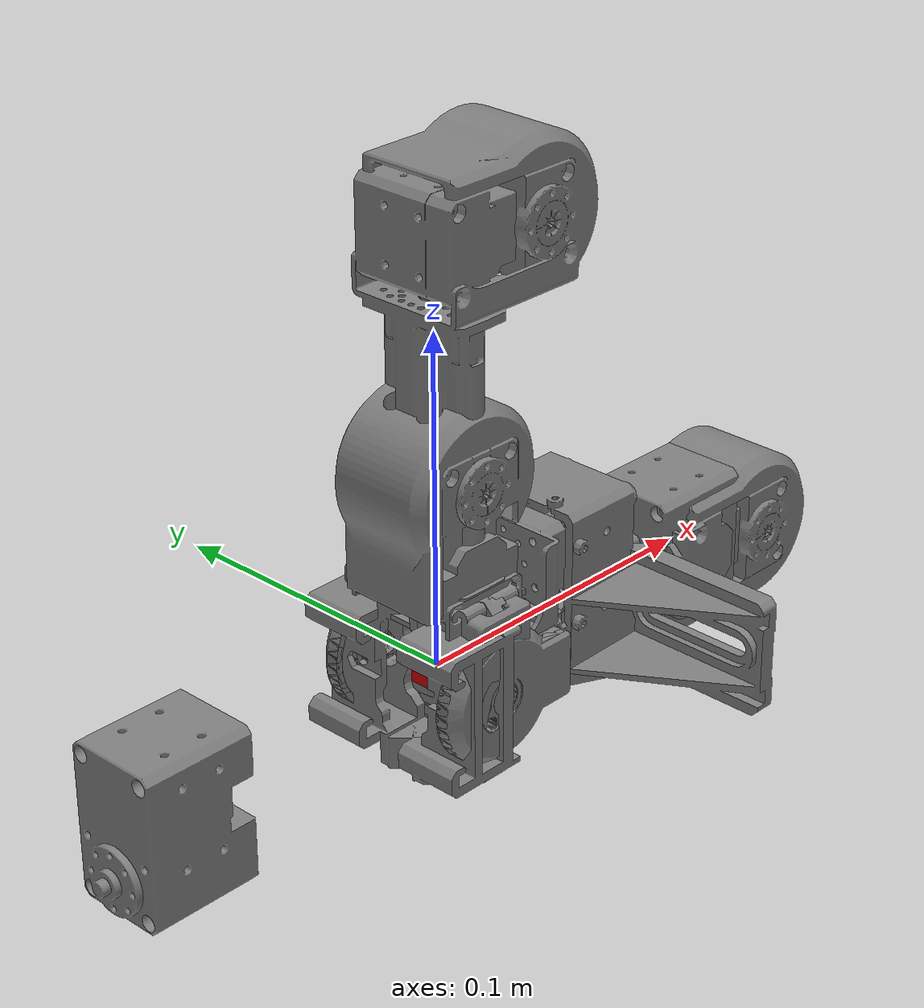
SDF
<sdf version="1.9">
<model name="marvin" canonical_link="body">
  <joint name="left_end_effector_joint" type="fixed">
    <pose relative_to="left_link5">0.12600 -0.00000 0.00000 -0.00000 0.00000 -0.00000</pose>
    <parent>left_link5</parent>
    <child>left_end_effector_link</child>
    <axis/>
  </joint>
  <joint name="left_gripper" type="prismatic">
    <pose relative_to="left_link5">0.08170 0.02100 0.00000 -0.00000 0.00000 -0.00000</pose>
    <parent>left_link5</parent>
    <child>left_gripper_link</child>
    <axis>
      <limit>
        <lower>-0.01000</lower>
        <upper>0.01900</upper>
        <effort>1</effort>
        <velocity>4.80000</velocity>
      </limit>
      <xyz>0.00000 1.00000 0.00000</xyz>
    </axis>
  </joint>
  <joint name="left_gripper_sub" type="prismatic">
    <mimic multiplier="1.00000" offset="0.00000" joint="left_gripper"/>
    <pose relative_to="left_link5">0.08170 -0.02100 0.00000 -0.00000 0.00000 -0.00000</pose>
    <parent>left_link5</parent>
    <child>left_gripper_link_sub</child>
    <axis>
      <limit>
        <lower>-0.01000</lower>
        <upper>0.01900</upper>
        <effort>1</effort>
        <velocity>4.80000</velocity>
      </limit>
      <xyz>0.00000 -1.00000 0.00000</xyz>
    </axis>
  </joint>
  <joint name="left_joint1" type="revolute">
    <pose relative_to="marvin">-0.09700 -0.00000 -0.01200 3.14159 1.57080 -0.00000</pose>
    <parent>marvin</parent>
    <child>left_link2</child>
    <axis>
      <limit>
        <lower>-2.82743</lower>
        <upper>2.82743</upper>
        <effort>1</effort>
        <velocity>4.80000</velocity>
      </limit>
      <xyz>0.00000 0.00000 1.00000</xyz>
    </axis>
  </joint>
  <joint name="left_joint2" type="revolute">
    <pose relative_to="left_link2">-0.00000 -0.00000 0.05950 -0.00000 0.00000 -0.00000</pose>
    <parent>left_link2</parent>
    <child>left_link3</child>
    <axis>
      <limit>
        <lower>-1.79071</lower>
        <upper>1.57080</upper>
        <effort>1</effort>
        <velocity>4.80000</velocity>
      </limit>
      <xyz>0.00000 1.00000 0.00000</xyz>
    </axis>
  </joint>
  <joint name="left_joint3" type="revolute">
    <pose relative_to="left_link3">0.02400 -0.00000 0.12800 -0.00000 0.00000 -0.00000</pose>
    <parent>left_link3</parent>
    <child>left_link4</child>
    <axis>
      <limit>
        <lower>-0.94248</lower>
        <upper>1.38230</upper>
        <effort>1</effort>
        <velocity>4.80000</velocity>
      </limit>
      <xyz>0.00000 1.00000 0.00000</xyz>
    </axis>
  </joint>
  <joint name="left_joint4" type="revolute">
    <pose relative_to="left_link4">0.12400 -0.00000 0.00000 -0.00000 0.00000 -0.00000</pose>
    <parent>left_link4</parent>
    <child>left_link5</child>
    <axis>
      <limit>
        <lower>-1.79071</lower>
        <upper>2.04204</upper>
        <effort>1</effort>
        <velocity>4.80000</velocity>
      </limit>
      <xyz>0.00000 1.00000 0.00000</xyz>
    </axis>
  </joint>
  <joint name="marvin_to_body" type="fixed">
    <pose relative_to="body">0.00000 0.00000 0.00000 0.00000 0.00000 0.00000</pose>
    <parent>body</parent>
    <child>marvin</child>
    <axis/>
  </joint>
  <joint name="right_end_effector_joint" type="fixed">
    <pose relative_to="right_link5">0.12600 0.00000 -0.00000 -0.00000 0.00000 0.00000</pose>
    <parent>right_link5</parent>
    <child>right_end_effector_link</child>
    <axis/>
  </joint>
  <joint name="right_gripper" type="prismatic">
    <pose relative_to="right_link5">0.08170 0.02100 -0.00000 -0.00000 0.00000 0.00000</pose>
    <parent>right_link5</parent>
    <child>right_gripper_link</child>
    <axis>
      <limit>
        <lower>-0.01000</lower>
        <upper>0.01900</upper>
        <effort>1</effort>
        <velocity>4.80000</velocity>
      </limit>
      <xyz>0.00000 1.00000 0.00000</xyz>
    </axis>
  </joint>
  <joint name="right_gripper_sub" type="prismatic">
    <mimic multiplier="1.00000" offset="0.00000" joint="right_gripper"/>
    <pose relative_to="right_link5">0.08170 -0.02100 -0.00000 -0.00000 0.00000 0.00000</pose>
    <parent>right_link5</parent>
    <child>right_gripper_link_sub</child>
    <axis>
      <limit>
        <lower>-0.01000</lower>
        <upper>0.01900</upper>
        <effort>1</effort>
        <velocity>4.80000</velocity>
      </limit>
      <xyz>0.00000 -1.00000 0.00000</xyz>
    </axis>
  </joint>
  <joint name="right_joint1" type="revolute">
    <pose relative_to="marvin">0.09700 -0.00000 -0.01200 -0.00000 1.57080 -0.00000</pose>
    <parent>marvin</parent>
    <child>right_link2</child>
    <axis>
      <limit>
        <lower>-2.82743</lower>
        <upper>2.82743</upper>
        <effort>1</effort>
        <velocity>4.80000</velocity>
      </limit>
      <xyz>0.00000 0.00000 1.00000</xyz>
    </axis>
  </joint>
  <joint name="right_joint2" type="revolute">
    <pose relative_to="right_link2">0.00000 0.00000 0.05950 -0.00000 0.00000 0.00000</pose>
    <parent>right_link2</parent>
    <child>right_link3</child>
    <axis>
      <limit>
        <lower>-1.79071</lower>
        <upper>1.57080</upper>
        <effort>1</effort>
        <velocity>4.80000</velocity>
      </limit>
      <xyz>0.00000 1.00000 0.00000</xyz>
    </axis>
  </joint>
  <joint name="right_joint3" type="revolute">
    <pose relative_to="right_link3">0.02400 0.00000 0.12800 -0.00000 0.00000 0.00000</pose>
    <parent>right_link3</parent>
    <child>right_link4</child>
    <axis>
      <limit>
        <lower>-0.94248</lower>
        <upper>1.38230</upper>
        <effort>1</effort>
        <velocity>4.80000</velocity>
      </limit>
      <xyz>0.00000 1.00000 0.00000</xyz>
    </axis>
  </joint>
  <joint name="right_joint4" type="revolute">
    <pose relative_to="right_link4">0.12400 0.00000 -0.00000 -0.00000 0.00000 0.00000</pose>
    <parent>right_link4</parent>
    <child>right_link5</child>
    <axis>
      <limit>
        <lower>-1.79071</lower>
        <upper>2.04204</upper>
        <effort>1</effort>
        <velocity>4.80000</velocity>
      </limit>
      <xyz>0.00000 1.00000 0.00000</xyz>
    </axis>
  </joint>
  <link name="body">
    <collision name="Cube">
      <pose relative_to="body">0.00000 0.00000 0.00000 0.00000 0.00000 0.00000</pose>
      <geometry>
        <box>
          <size>0.16000 0.06000 0.60000</size>
        </box>
      </geometry>
      <surface>
        <contact/>
      </surface>
    </collision>
  </link>
  <link name="left_end_effector_link">
    <inertial>
      <inertia>
        <ixx>0.00100</ixx>
        <ixy>0.00000</ixy>
        <ixz>0.00000</ixz>
        <iyy>0.00100</iyy>
        <iyz>0.00000</iyz>
        <izz>0.00100</izz>
      </inertia>
      <pose relative_to="left_end_effector_link">0.00000 0.00000 0.00000 0.00000 0.00000 0.00000</pose>
      <mass>0.00100</mass>
    </inertial>
    <visual name="left_end_effector_link_visual">
      <material>
        <diffuse>0.80000 0.00000 0.00000 1.00000</diffuse>
        <specular>0.02745 0.02745 0.02745 1.00000</specular>
        <emissive>0.00000 0.00000 0.00000 1.00000</emissive>
      </material>
      <pose relative_to="left_end_effector_link">0.00000 -0.00000 0.00000 -0.00000 0.00000 -0.00000</pose>
      <geometry>
        <box>
          <size>0.01000 0.01000 0.01000</size>
        </box>
      </geometry>
    </visual>
  </link>
  <link name="left_gripper_link">
    <collision name="left_gripper_link_collision">
      <pose relative_to="left_gripper_link">0.00000 0.00000 -0.00000 -0.00000 -0.00000 -0.00000</pose>
      <geometry>
        <mesh>
          <uri>package://marvin/meshes/stl/chain_link_grip_l.stl</uri>
          <scale>0.00100 0.00100 0.00100</scale>
        </mesh>
      </geometry>
      <surface>
        <contact/>
      </surface>
    </collision>
    <inertial>
      <inertia>
        <ixx>0.00100</ixx>
        <ixy>0.00000</ixy>
        <ixz>0.00000</ixz>
        <iyy>0.00100</iyy>
        <iyz>0.00000</iyz>
        <izz>0.00100</izz>
      </inertia>
      <pose relative_to="left_gripper_link">0.00000 0.00000 0.00000 0.00000 0.00000 0.00000</pose>
      <mass>0.00100</mass>
    </inertial>
    <visual name="left_gripper_link_visual">
      <material>
        <diffuse>0.49804 0.49804 0.49804 1.00000</diffuse>
        <specular>0.02745 0.02745 0.02745 1.00000</specular>
        <emissive>0.00000 0.00000 0.00000 1.00000</emissive>
      </material>
      <pose relative_to="left_gripper_link">0.00000 0.00000 -0.00000 -0.00000 -0.00000 -0.00000</pose>
      <geometry>
        <mesh>
          <uri>package://marvin/meshes/stl/chain_link_grip_l.stl</uri>
          <scale>0.00100 0.00100 0.00100</scale>
        </mesh>
      </geometry>
    </visual>
  </link>
  <link name="left_gripper_link_sub">
    <collision name="left_gripper_link_sub_collision">
      <pose relative_to="left_gripper_link_sub">-0.00000 0.00000 -0.00000 -0.00000 -0.00000 -0.00000</pose>
      <geometry>
        <mesh>
          <uri>package://marvin/meshes/stl/chain_link_grip_r.stl</uri>
          <scale>0.00100 0.00100 0.00100</scale>
        </mesh>
      </geometry>
      <surface>
        <contact/>
      </surface>
    </collision>
    <inertial>
      <inertia>
        <ixx>0.00100</ixx>
        <ixy>0.00000</ixy>
        <ixz>0.00000</ixz>
        <iyy>0.00100</iyy>
        <iyz>0.00000</iyz>
        <izz>0.00100</izz>
      </inertia>
      <pose relative_to="left_gripper_link_sub">0.00000 0.00000 0.00000 0.00000 0.00000 0.00000</pose>
      <mass>0.00100</mass>
    </inertial>
    <visual name="left_gripper_link_sub_visual">
      <material>
        <diffuse>0.49804 0.49804 0.49804 1.00000</diffuse>
        <specular>0.02745 0.02745 0.02745 1.00000</specular>
        <emissive>0.00000 0.00000 0.00000 1.00000</emissive>
      </material>
      <pose relative_to="left_gripper_link_sub">-0.00000 0.00000 -0.00000 -0.00000 -0.00000 -0.00000</pose>
      <geometry>
        <mesh>
          <uri>package://marvin/meshes/stl/chain_link_grip_r.stl</uri>
          <scale>0.00100 0.00100 0.00100</scale>
        </mesh>
      </geometry>
    </visual>
  </link>
  <link name="left_link2">
    <collision name="left_link2_collision">
      <pose relative_to="left_link2">-0.00000 -0.00000 0.01900 -0.00000 -0.00000 -0.00000</pose>
      <geometry>
        <mesh>
          <uri>package://marvin/meshes/stl/chain_link2.stl</uri>
          <scale>0.00100 0.00100 0.00100</scale>
        </mesh>
      </geometry>
      <surface>
        <contact/>
      </surface>
    </collision>
    <inertial>
      <inertia>
        <ixx>0.00003</ixx>
        <ixy>-0.00000</ixy>
        <ixz>-0.00000</ixz>
        <iyy>0.00003</iyy>
        <iyz>0.00000</iyz>
        <izz>0.00002</izz>
      </inertia>
      <pose relative_to="left_link2">-0.00030 0.00054 0.04743 0.00000 0.00000 0.00000</pose>
      <mass>0.09841</mass>
    </inertial>
    <visual name="left_link2_visual">
      <material>
        <diffuse>0.49804 0.49804 0.49804 1.00000</diffuse>
        <specular>0.02745 0.02745 0.02745 1.00000</specular>
        <emissive>0.00000 0.00000 0.00000 1.00000</emissive>
      </material>
      <pose relative_to="left_link2">-0.00000 -0.00000 0.01900 -0.00000 -0.00000 -0.00000</pose>
      <geometry>
        <mesh>
          <uri>package://marvin/meshes/stl/chain_link2.stl</uri>
          <scale>0.00100 0.00100 0.00100</scale>
        </mesh>
      </geometry>
    </visual>
  </link>
  <link name="left_link3">
    <collision name="left_link3_collision">
      <pose relative_to="left_link3">-0.00000 -0.00000 0.00000 -0.00000 -0.00000 -0.00000</pose>
      <geometry>
        <mesh>
          <uri>package://marvin/meshes/stl/chain_link3.stl</uri>
          <scale>0.00100 0.00100 0.00100</scale>
        </mesh>
      </geometry>
      <surface>
        <contact/>
      </surface>
    </collision>
    <inertial>
      <inertia>
        <ixx>0.00033</ixx>
        <ixy>-0.00000</ixy>
        <ixz>-0.00004</ixz>
        <iyy>0.00034</iyy>
        <iyz>-0.00000</iyz>
        <izz>0.00006</izz>
      </inertia>
      <pose relative_to="left_link3">0.01031 0.00038 0.10170 0.00000 0.00000 0.00000</pose>
      <mass>0.13851</mass>
    </inertial>
    <visual name="left_link3_visual">
      <material>
        <diffuse>0.49804 0.49804 0.49804 1.00000</diffuse>
        <specular>0.02745 0.02745 0.02745 1.00000</specular>
        <emissive>0.00000 0.00000 0.00000 1.00000</emissive>
      </material>
      <pose relative_to="left_link3">-0.00000 -0.00000 0.00000 -0.00000 -0.00000 -0.00000</pose>
      <geometry>
        <mesh>
          <uri>package://marvin/meshes/stl/chain_link3.stl</uri>
          <scale>0.00100 0.00100 0.00100</scale>
        </mesh>
      </geometry>
    </visual>
  </link>
  <link name="left_link4">
    <collision name="left_link4_collision">
      <pose relative_to="left_link4">0.00000 -0.00000 0.00000 -0.00000 -0.00000 -0.00000</pose>
      <geometry>
        <mesh>
          <uri>package://marvin/meshes/stl/chain_link4.stl</uri>
          <scale>0.00100 0.00100 0.00100</scale>
        </mesh>
      </geometry>
      <surface>
        <contact/>
      </surface>
    </collision>
    <inertial>
      <inertia>
        <ixx>0.00003</ixx>
        <ixy>-0.00000</ixy>
        <ixz>-0.00000</ixz>
        <iyy>0.00024</iyy>
        <iyz>0.00000</iyz>
        <izz>0.00025</izz>
      </inertia>
      <pose relative_to="left_link4">0.09091 0.00039 0.00022 0.00000 0.00000 0.00000</pose>
      <mass>0.13275</mass>
    </inertial>
    <visual name="left_link4_visual">
      <material>
        <diffuse>0.49804 0.49804 0.49804 1.00000</diffuse>
        <specular>0.02745 0.02745 0.02745 1.00000</specular>
        <emissive>0.00000 0.00000 0.00000 1.00000</emissive>
      </material>
      <pose relative_to="left_link4">0.00000 -0.00000 0.00000 -0.00000 -0.00000 -0.00000</pose>
      <geometry>
        <mesh>
          <uri>package://marvin/meshes/stl/chain_link4.stl</uri>
          <scale>0.00100 0.00100 0.00100</scale>
        </mesh>
      </geometry>
    </visual>
  </link>
  <link name="left_link5">
    <collision name="left_link5_collision">
      <pose relative_to="left_link5">-0.00000 -0.00000 0.00000 -0.00000 -0.00000 -0.00000</pose>
      <geometry>
        <mesh>
          <uri>package://marvin/meshes/stl/chain_link5.stl</uri>
          <scale>0.00100 0.00100 0.00100</scale>
        </mesh>
      </geometry>
      <surface>
        <contact/>
      </surface>
    </collision>
    <inertial>
      <inertia>
        <ixx>0.00008</ixx>
        <ixy>0.00000</ixy>
        <ixz>-0.00000</ixz>
        <iyy>0.00008</iyy>
        <iyz>0.00000</iyz>
        <izz>0.00009</izz>
      </inertia>
      <pose relative_to="left_link5">0.04421 0.00000 0.00891 0.00000 0.00000 0.00000</pose>
      <mass>0.14328</mass>
    </inertial>
    <visual name="left_link5_visual">
      <material>
        <diffuse>0.49804 0.49804 0.49804 1.00000</diffuse>
        <specular>0.02745 0.02745 0.02745 1.00000</specular>
        <emissive>0.00000 0.00000 0.00000 1.00000</emissive>
      </material>
      <pose relative_to="left_link5">-0.00000 -0.00000 0.00000 -0.00000 -0.00000 -0.00000</pose>
      <geometry>
        <mesh>
          <uri>package://marvin/meshes/stl/chain_link5.stl</uri>
          <scale>0.00100 0.00100 0.00100</scale>
        </mesh>
      </geometry>
    </visual>
  </link>
  <link name="marvin">
    <collision name="left_base_link_collision">
      <pose relative_to="marvin">-0.08000 0.00000 0.00000 3.14159 1.57080 -0.00000</pose>
      <geometry>
        <mesh>
          <uri>package://marvin/meshes/stl/chain_link1.stl</uri>
          <scale>0.00100 0.00100 0.00100</scale>
        </mesh>
      </geometry>
      <surface>
        <contact/>
      </surface>
    </collision>
    <collision name="right_base_link_collision">
      <pose relative_to="marvin">0.08000 -0.00000 0.00000 -0.00000 1.57080 -0.00000</pose>
      <geometry>
        <mesh>
          <uri>package://marvin/meshes/stl/chain_link1.stl</uri>
          <scale>0.00100 0.00100 0.00100</scale>
        </mesh>
      </geometry>
      <surface>
        <contact/>
      </surface>
    </collision>
    <inertial>
      <inertia>
        <ixx>0.00003</ixx>
        <ixy>0.00000</ixy>
        <ixz>-0.00000</ixz>
        <iyy>0.00004</iyy>
        <iyz>0.00000</iyz>
        <izz>0.00004</izz>
      </inertia>
      <pose relative_to="marvin">0.00000 -0.00000 -0.00031 0.00000 0.00000 0.00000</pose>
      <mass>0.15824</mass>
    </inertial>
    <visual name="left_base_link_visual">
      <material>
        <diffuse>0.49804 0.49804 0.49804 1.00000</diffuse>
        <specular>0.02745 0.02745 0.02745 1.00000</specular>
        <emissive>0.00000 0.00000 0.00000 1.00000</emissive>
      </material>
      <pose relative_to="marvin">-0.08000 0.00000 0.00000 3.14159 1.57080 -0.00000</pose>
      <geometry>
        <mesh>
          <uri>package://marvin/meshes/stl/chain_link1.stl</uri>
          <scale>0.00100 0.00100 0.00100</scale>
        </mesh>
      </geometry>
    </visual>
    <visual name="right_base_link_visual">
      <material>
        <diffuse>0.49804 0.49804 0.49804 1.00000</diffuse>
        <specular>0.02745 0.02745 0.02745 1.00000</specular>
        <emissive>0.00000 0.00000 0.00000 1.00000</emissive>
      </material>
      <pose relative_to="marvin">0.08000 -0.00000 0.00000 -0.00000 1.57080 -0.00000</pose>
      <geometry>
        <mesh>
          <uri>package://marvin/meshes/stl/chain_link1.stl</uri>
          <scale>0.00100 0.00100 0.00100</scale>
        </mesh>
      </geometry>
    </visual>
  </link>
  <link name="right_end_effector_link">
    <inertial>
      <inertia>
        <ixx>0.00100</ixx>
        <ixy>0.00000</ixy>
        <ixz>0.00000</ixz>
        <iyy>0.00100</iyy>
        <iyz>0.00000</iyz>
        <izz>0.00100</izz>
      </inertia>
      <pose relative_to="right_end_effector_link">-0.00000 0.00000 0.00000 0.00000 0.00000 0.00000</pose>
      <mass>0.00100</mass>
    </inertial>
    <visual name="right_end_effector_link_visual">
      <material>
        <diffuse>0.80000 0.00000 0.00000 1.00000</diffuse>
        <specular>0.02745 0.02745 0.02745 1.00000</specular>
        <emissive>0.00000 0.00000 0.00000 1.00000</emissive>
      </material>
      <pose relative_to="right_end_effector_link">0.00000 -0.00000 0.00000 -0.00000 0.00000 0.00000</pose>
      <geometry>
        <box>
          <size>0.01000 0.01000 0.01000</size>
        </box>
      </geometry>
    </visual>
  </link>
  <link name="right_gripper_link">
    <collision name="right_gripper_link_collision">
      <pose relative_to="right_gripper_link">0.00000 0.00000 0.00000 -0.00000 0.00000 0.00000</pose>
      <geometry>
        <mesh>
          <uri>package://marvin/meshes/stl/chain_link_grip_l.stl</uri>
          <scale>0.00100 0.00100 0.00100</scale>
        </mesh>
      </geometry>
      <surface>
        <contact/>
      </surface>
    </collision>
    <inertial>
      <inertia>
        <ixx>0.00100</ixx>
        <ixy>0.00000</ixy>
        <ixz>0.00000</ixz>
        <iyy>0.00100</iyy>
        <iyz>0.00000</iyz>
        <izz>0.00100</izz>
      </inertia>
      <pose relative_to="right_gripper_link">-0.00000 0.00000 0.00000 0.00000 0.00000 0.00000</pose>
      <mass>0.00100</mass>
    </inertial>
    <visual name="right_gripper_link_visual">
      <material>
        <diffuse>0.49804 0.49804 0.49804 1.00000</diffuse>
        <specular>0.02745 0.02745 0.02745 1.00000</specular>
        <emissive>0.00000 0.00000 0.00000 1.00000</emissive>
      </material>
      <pose relative_to="right_gripper_link">0.00000 0.00000 0.00000 -0.00000 0.00000 0.00000</pose>
      <geometry>
        <mesh>
          <uri>package://marvin/meshes/stl/chain_link_grip_l.stl</uri>
          <scale>0.00100 0.00100 0.00100</scale>
        </mesh>
      </geometry>
    </visual>
  </link>
  <link name="right_gripper_link_sub">
    <collision name="right_gripper_link_sub_collision">
      <pose relative_to="right_gripper_link_sub">0.00000 -0.00000 0.00000 -0.00000 0.00000 0.00000</pose>
      <geometry>
        <mesh>
          <uri>package://marvin/meshes/stl/chain_link_grip_r.stl</uri>
          <scale>0.00100 0.00100 0.00100</scale>
        </mesh>
      </geometry>
      <surface>
        <contact/>
      </surface>
    </collision>
    <inertial>
      <inertia>
        <ixx>0.00100</ixx>
        <ixy>0.00000</ixy>
        <ixz>0.00000</ixz>
        <iyy>0.00100</iyy>
        <iyz>0.00000</iyz>
        <izz>0.00100</izz>
      </inertia>
      <pose relative_to="right_gripper_link_sub">-0.00000 0.00000 0.00000 0.00000 0.00000 0.00000</pose>
      <mass>0.00100</mass>
    </inertial>
    <visual name="right_gripper_link_sub_visual">
      <material>
        <diffuse>0.49804 0.49804 0.49804 1.00000</diffuse>
        <specular>0.02745 0.02745 0.02745 1.00000</specular>
        <emissive>0.00000 0.00000 0.00000 1.00000</emissive>
      </material>
      <pose relative_to="right_gripper_link_sub">0.00000 -0.00000 0.00000 -0.00000 0.00000 0.00000</pose>
      <geometry>
        <mesh>
          <uri>package://marvin/meshes/stl/chain_link_grip_r.stl</uri>
          <scale>0.00100 0.00100 0.00100</scale>
        </mesh>
      </geometry>
    </visual>
  </link>
  <link name="right_link2">
    <collision name="right_link2_collision">
      <pose relative_to="right_link2">0.00000 -0.00000 0.01900 -0.00000 0.00000 0.00000</pose>
      <geometry>
        <mesh>
          <uri>package://marvin/meshes/stl/chain_link2.stl</uri>
          <scale>0.00100 0.00100 0.00100</scale>
        </mesh>
      </geometry>
      <surface>
        <contact/>
      </surface>
    </collision>
    <inertial>
      <inertia>
        <ixx>0.00003</ixx>
        <ixy>-0.00000</ixy>
        <ixz>-0.00000</ixz>
        <iyy>0.00003</iyy>
        <iyz>0.00000</iyz>
        <izz>0.00002</izz>
      </inertia>
      <pose relative_to="right_link2">-0.00030 0.00054 0.04743 0.00000 0.00000 0.00000</pose>
      <mass>0.09841</mass>
    </inertial>
    <visual name="right_link2_visual">
      <material>
        <diffuse>0.49804 0.49804 0.49804 1.00000</diffuse>
        <specular>0.02745 0.02745 0.02745 1.00000</specular>
        <emissive>0.00000 0.00000 0.00000 1.00000</emissive>
      </material>
      <pose relative_to="right_link2">0.00000 -0.00000 0.01900 -0.00000 0.00000 0.00000</pose>
      <geometry>
        <mesh>
          <uri>package://marvin/meshes/stl/chain_link2.stl</uri>
          <scale>0.00100 0.00100 0.00100</scale>
        </mesh>
      </geometry>
    </visual>
  </link>
  <link name="right_link3">
    <collision name="right_link3_collision">
      <pose relative_to="right_link3">0.00000 0.00000 0.00000 -0.00000 0.00000 0.00000</pose>
      <geometry>
        <mesh>
          <uri>package://marvin/meshes/stl/chain_link3.stl</uri>
          <scale>0.00100 0.00100 0.00100</scale>
        </mesh>
      </geometry>
      <surface>
        <contact/>
      </surface>
    </collision>
    <inertial>
      <inertia>
        <ixx>0.00033</ixx>
        <ixy>-0.00000</ixy>
        <ixz>-0.00004</ixz>
        <iyy>0.00034</iyy>
        <iyz>-0.00000</iyz>
        <izz>0.00006</izz>
      </inertia>
      <pose relative_to="right_link3">0.01031 0.00038 0.10170 0.00000 0.00000 0.00000</pose>
      <mass>0.13851</mass>
    </inertial>
    <visual name="right_link3_visual">
      <material>
        <diffuse>0.49804 0.49804 0.49804 1.00000</diffuse>
        <specular>0.02745 0.02745 0.02745 1.00000</specular>
        <emissive>0.00000 0.00000 0.00000 1.00000</emissive>
      </material>
      <pose relative_to="right_link3">0.00000 0.00000 0.00000 -0.00000 0.00000 0.00000</pose>
      <geometry>
        <mesh>
          <uri>package://marvin/meshes/stl/chain_link3.stl</uri>
          <scale>0.00100 0.00100 0.00100</scale>
        </mesh>
      </geometry>
    </visual>
  </link>
  <link name="right_link4">
    <collision name="right_link4_collision">
      <pose relative_to="right_link4">-0.00000 0.00000 0.00000 -0.00000 0.00000 0.00000</pose>
      <geometry>
        <mesh>
          <uri>package://marvin/meshes/stl/chain_link4.stl</uri>
          <scale>0.00100 0.00100 0.00100</scale>
        </mesh>
      </geometry>
      <surface>
        <contact/>
      </surface>
    </collision>
    <inertial>
      <inertia>
        <ixx>0.00003</ixx>
        <ixy>-0.00000</ixy>
        <ixz>-0.00000</ixz>
        <iyy>0.00024</iyy>
        <iyz>0.00000</iyz>
        <izz>0.00025</izz>
      </inertia>
      <pose relative_to="right_link4">0.09091 0.00039 0.00022 0.00000 0.00000 0.00000</pose>
      <mass>0.13275</mass>
    </inertial>
    <visual name="right_link4_visual">
      <material>
        <diffuse>0.49804 0.49804 0.49804 1.00000</diffuse>
        <specular>0.02745 0.02745 0.02745 1.00000</specular>
        <emissive>0.00000 0.00000 0.00000 1.00000</emissive>
      </material>
      <pose relative_to="right_link4">-0.00000 0.00000 0.00000 -0.00000 0.00000 0.00000</pose>
      <geometry>
        <mesh>
          <uri>package://marvin/meshes/stl/chain_link4.stl</uri>
          <scale>0.00100 0.00100 0.00100</scale>
        </mesh>
      </geometry>
    </visual>
  </link>
  <link name="right_link5">
    <collision name="right_link5_collision">
      <pose relative_to="right_link5">0.00000 0.00000 0.00000 -0.00000 0.00000 0.00000</pose>
      <geometry>
        <mesh>
          <uri>package://marvin/meshes/stl/chain_link5.stl</uri>
          <scale>0.00100 0.00100 0.00100</scale>
        </mesh>
      </geometry>
      <surface>
        <contact/>
      </surface>
    </collision>
    <inertial>
      <inertia>
        <ixx>0.00008</ixx>
        <ixy>0.00000</ixy>
        <ixz>-0.00000</ixz>
        <iyy>0.00008</iyy>
        <iyz>0.00000</iyz>
        <izz>0.00009</izz>
      </inertia>
      <pose relative_to="right_link5">0.04421 0.00000 0.00891 0.00000 0.00000 0.00000</pose>
      <mass>0.14328</mass>
    </inertial>
    <visual name="right_link5_visual">
      <material>
        <diffuse>0.49804 0.49804 0.49804 1.00000</diffuse>
        <specular>0.02745 0.02745 0.02745 1.00000</specular>
        <emissive>0.00000 0.00000 0.00000 1.00000</emissive>
      </material>
      <pose relative_to="right_link5">0.00000 0.00000 0.00000 -0.00000 0.00000 0.00000</pose>
      <geometry>
        <mesh>
          <uri>package://marvin/meshes/stl/chain_link5.stl</uri>
          <scale>0.00100 0.00100 0.00100</scale>
        </mesh>
      </geometry>
    </visual>
  </link>
</model>
</sdf>
